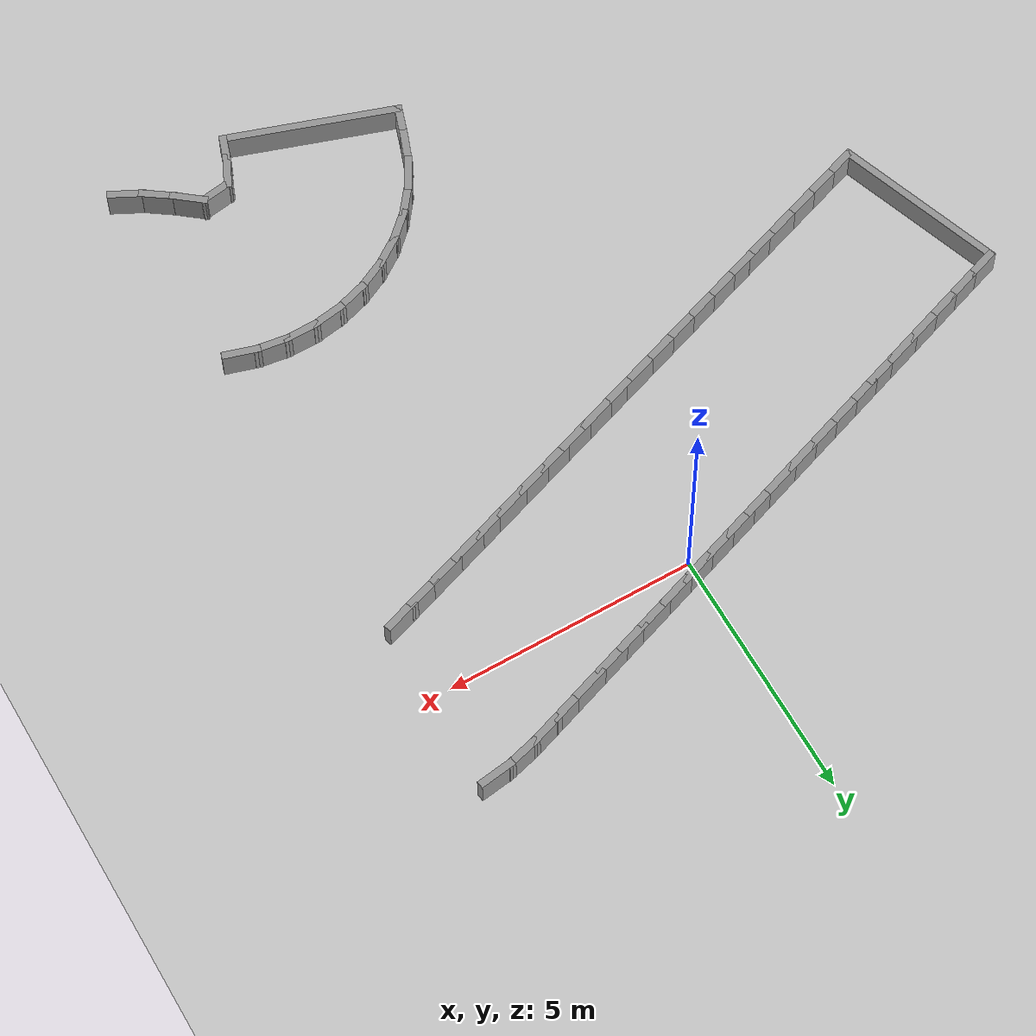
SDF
<sdf version="1.7">
 <world name="default">
  <model name="ground_plane">
   <static>1</static>
   <link name="link">
    <collision name="collision">
     <geometry><plane><normal>0 0 1</normal><size>100 100</size></plane></geometry>
     <surface><friction><ode><mu>100</mu><mu2>50</mu2></ode></friction></surface>
    </collision>
    <visual name="visual">
     <cast_shadows>0</cast_shadows>
     <geometry><plane><normal>0 0 1</normal><size>100 100</size></plane></geometry>
     <material>
      <script><uri>file://media/materials/scripts/gazebo.material</uri><name>Gazebo/Grey</name></script>
     </material>
    </visual>
   </link>
  </model>
  <model name="rand_turn_08">
   <link name="Wall_0">
    <collision name="Wall_0_Collision">
     <geometry><box><size>0.7500 0.1500 0.6000</size></box></geometry>
     <pose>0 0 0.3000 0 -0 0</pose>
    </collision>
    <visual name="Wall_0_Visual">
     <pose>0 0 0.3000 0 -0 0</pose>
     <geometry><box><size>0.7500 0.1500 0.6000</size></box></geometry>
     <material>
      <script><uri>file://media/materials/scripts/gazebo.material</uri><name>Gazebo/Grey</name></script>
      <ambient>1 1 1 1</ambient>
     </material>
    </visual>
    <pose>-7.8536 -2.4259 0 0 -0 0.33717</pose>
   </link>
   <link name="Wall_1">
    <collision name="Wall_1_Collision">
     <geometry><box><size>0.7500 0.1500 0.6000</size></box></geometry>
     <pose>0 0 0.3000 0 -0 0</pose>
    </collision>
    <visual name="Wall_1_Visual">
     <pose>0 0 0.3000 0 -0 0</pose>
     <geometry><box><size>0.7500 0.1500 0.6000</size></box></geometry>
     <material>
      <script><uri>file://media/materials/scripts/gazebo.material</uri><name>Gazebo/Grey</name></script>
      <ambient>1 1 1 1</ambient>
     </material>
    </visual>
    <pose>-7.2874 -2.2274 0 0 -0 0.33717</pose>
   </link>
   <link name="Wall_2">
    <collision name="Wall_2_Collision">
     <geometry><box><size>0.7500 0.1500 0.6000</size></box></geometry>
     <pose>0 0 0.3000 0 -0 0</pose>
    </collision>
    <visual name="Wall_2_Visual">
     <pose>0 0 0.3000 0 -0 0</pose>
     <geometry><box><size>0.7500 0.1500 0.6000</size></box></geometry>
     <material>
      <script><uri>file://media/materials/scripts/gazebo.material</uri><name>Gazebo/Grey</name></script>
      <ambient>1 1 1 1</ambient>
     </material>
    </visual>
    <pose>-6.7212 -2.0289 0 0 -0 0.33717</pose>
   </link>
   <link name="Wall_3">
    <collision name="Wall_3_Collision">
     <geometry><box><size>0.7500 0.1500 0.6000</size></box></geometry>
     <pose>0 0 0.3000 0 -0 0</pose>
    </collision>
    <visual name="Wall_3_Visual">
     <pose>0 0 0.3000 0 -0 0</pose>
     <geometry><box><size>0.7500 0.1500 0.6000</size></box></geometry>
     <material>
      <script><uri>file://media/materials/scripts/gazebo.material</uri><name>Gazebo/Grey</name></script>
      <ambient>1 1 1 1</ambient>
     </material>
    </visual>
    <pose>-6.1550 -1.8304 0 0 -0 0.33717</pose>
   </link>
   <link name="Wall_4">
    <collision name="Wall_4_Collision">
     <geometry><box><size>0.7500 0.1500 0.6000</size></box></geometry>
     <pose>0 0 0.3000 0 -0 0</pose>
    </collision>
    <visual name="Wall_4_Visual">
     <pose>0 0 0.3000 0 -0 0</pose>
     <geometry><box><size>0.7500 0.1500 0.6000</size></box></geometry>
     <material>
      <script><uri>file://media/materials/scripts/gazebo.material</uri><name>Gazebo/Grey</name></script>
      <ambient>1 1 1 1</ambient>
     </material>
    </visual>
    <pose>-5.5888 -1.6319 0 0 -0 0.33717</pose>
   </link>
   <link name="Wall_5">
    <collision name="Wall_5_Collision">
     <geometry><box><size>0.7500 0.1500 0.6000</size></box></geometry>
     <pose>0 0 0.3000 0 -0 0</pose>
    </collision>
    <visual name="Wall_5_Visual">
     <pose>0 0 0.3000 0 -0 0</pose>
     <geometry><box><size>0.7500 0.1500 0.6000</size></box></geometry>
     <material>
      <script><uri>file://media/materials/scripts/gazebo.material</uri><name>Gazebo/Grey</name></script>
      <ambient>1 1 1 1</ambient>
     </material>
    </visual>
    <pose>-5.0225 -1.4335 0 0 -0 0.33717</pose>
   </link>
   <link name="Wall_6">
    <collision name="Wall_6_Collision">
     <geometry><box><size>0.7500 0.1500 0.6000</size></box></geometry>
     <pose>0 0 0.3000 0 -0 0</pose>
    </collision>
    <visual name="Wall_6_Visual">
     <pose>0 0 0.3000 0 -0 0</pose>
     <geometry><box><size>0.7500 0.1500 0.6000</size></box></geometry>
     <material>
      <script><uri>file://media/materials/scripts/gazebo.material</uri><name>Gazebo/Grey</name></script>
      <ambient>1 1 1 1</ambient>
     </material>
    </visual>
    <pose>-4.4563 -1.2350 0 0 -0 0.33717</pose>
   </link>
   <link name="Wall_7">
    <collision name="Wall_7_Collision">
     <geometry><box><size>0.7500 0.1500 0.6000</size></box></geometry>
     <pose>0 0 0.3000 0 -0 0</pose>
    </collision>
    <visual name="Wall_7_Visual">
     <pose>0 0 0.3000 0 -0 0</pose>
     <geometry><box><size>0.7500 0.1500 0.6000</size></box></geometry>
     <material>
      <script><uri>file://media/materials/scripts/gazebo.material</uri><name>Gazebo/Grey</name></script>
      <ambient>1 1 1 1</ambient>
     </material>
    </visual>
    <pose>-3.8901 -1.0365 0 0 -0 0.33717</pose>
   </link>
   <link name="Wall_8">
    <collision name="Wall_8_Collision">
     <geometry><box><size>0.7500 0.1500 0.6000</size></box></geometry>
     <pose>0 0 0.3000 0 -0 0</pose>
    </collision>
    <visual name="Wall_8_Visual">
     <pose>0 0 0.3000 0 -0 0</pose>
     <geometry><box><size>0.7500 0.1500 0.6000</size></box></geometry>
     <material>
      <script><uri>file://media/materials/scripts/gazebo.material</uri><name>Gazebo/Grey</name></script>
      <ambient>1 1 1 1</ambient>
     </material>
    </visual>
    <pose>-3.3239 -0.8380 0 0 -0 0.33717</pose>
   </link>
   <link name="Wall_9">
    <collision name="Wall_9_Collision">
     <geometry><box><size>0.7500 0.1500 0.6000</size></box></geometry>
     <pose>0 0 0.3000 0 -0 0</pose>
    </collision>
    <visual name="Wall_9_Visual">
     <pose>0 0 0.3000 0 -0 0</pose>
     <geometry><box><size>0.7500 0.1500 0.6000</size></box></geometry>
     <material>
      <script><uri>file://media/materials/scripts/gazebo.material</uri><name>Gazebo/Grey</name></script>
      <ambient>1 1 1 1</ambient>
     </material>
    </visual>
    <pose>-2.7577 -0.6395 0 0 -0 0.33717</pose>
   </link>
   <link name="Wall_10">
    <collision name="Wall_10_Collision">
     <geometry><box><size>0.7500 0.1500 0.6000</size></box></geometry>
     <pose>0 0 0.3000 0 -0 0</pose>
    </collision>
    <visual name="Wall_10_Visual">
     <pose>0 0 0.3000 0 -0 0</pose>
     <geometry><box><size>0.7500 0.1500 0.6000</size></box></geometry>
     <material>
      <script><uri>file://media/materials/scripts/gazebo.material</uri><name>Gazebo/Grey</name></script>
      <ambient>1 1 1 1</ambient>
     </material>
    </visual>
    <pose>-2.1915 -0.4410 0 0 -0 0.33717</pose>
   </link>
   <link name="Wall_11">
    <collision name="Wall_11_Collision">
     <geometry><box><size>0.7500 0.1500 0.6000</size></box></geometry>
     <pose>0 0 0.3000 0 -0 0</pose>
    </collision>
    <visual name="Wall_11_Visual">
     <pose>0 0 0.3000 0 -0 0</pose>
     <geometry><box><size>0.7500 0.1500 0.6000</size></box></geometry>
     <material>
      <script><uri>file://media/materials/scripts/gazebo.material</uri><name>Gazebo/Grey</name></script>
      <ambient>1 1 1 1</ambient>
     </material>
    </visual>
    <pose>-1.6252 -0.2425 0 0 -0 0.33717</pose>
   </link>
   <link name="Wall_12">
    <collision name="Wall_12_Collision">
     <geometry><box><size>0.7500 0.1500 0.6000</size></box></geometry>
     <pose>0 0 0.3000 0 -0 0</pose>
    </collision>
    <visual name="Wall_12_Visual">
     <pose>0 0 0.3000 0 -0 0</pose>
     <geometry><box><size>0.7500 0.1500 0.6000</size></box></geometry>
     <material>
      <script><uri>file://media/materials/scripts/gazebo.material</uri><name>Gazebo/Grey</name></script>
      <ambient>1 1 1 1</ambient>
     </material>
    </visual>
    <pose>-1.0590 -0.0440 0 0 -0 0.33717</pose>
   </link>
   <link name="Wall_13">
    <collision name="Wall_13_Collision">
     <geometry><box><size>0.7500 0.1500 0.6000</size></box></geometry>
     <pose>0 0 0.3000 0 -0 0</pose>
    </collision>
    <visual name="Wall_13_Visual">
     <pose>0 0 0.3000 0 -0 0</pose>
     <geometry><box><size>0.7500 0.1500 0.6000</size></box></geometry>
     <material>
      <script><uri>file://media/materials/scripts/gazebo.material</uri><name>Gazebo/Grey</name></script>
      <ambient>1 1 1 1</ambient>
     </material>
    </visual>
    <pose>-0.4928 0.1545 0 0 -0 0.33717</pose>
   </link>
   <link name="Wall_14">
    <collision name="Wall_14_Collision">
     <geometry><box><size>0.7500 0.1500 0.6000</size></box></geometry>
     <pose>0 0 0.3000 0 -0 0</pose>
    </collision>
    <visual name="Wall_14_Visual">
     <pose>0 0 0.3000 0 -0 0</pose>
     <geometry><box><size>0.7500 0.1500 0.6000</size></box></geometry>
     <material>
      <script><uri>file://media/materials/scripts/gazebo.material</uri><name>Gazebo/Grey</name></script>
      <ambient>1 1 1 1</ambient>
     </material>
    </visual>
    <pose>0.0734 0.3530 0 0 -0 0.33717</pose>
   </link>
   <link name="Wall_15">
    <collision name="Wall_15_Collision">
     <geometry><box><size>0.7500 0.1500 0.6000</size></box></geometry>
     <pose>0 0 0.3000 0 -0 0</pose>
    </collision>
    <visual name="Wall_15_Visual">
     <pose>0 0 0.3000 0 -0 0</pose>
     <geometry><box><size>0.7500 0.1500 0.6000</size></box></geometry>
     <material>
      <script><uri>file://media/materials/scripts/gazebo.material</uri><name>Gazebo/Grey</name></script>
      <ambient>1 1 1 1</ambient>
     </material>
    </visual>
    <pose>0.6396 0.5515 0 0 -0 0.33717</pose>
   </link>
   <link name="Wall_16">
    <collision name="Wall_16_Collision">
     <geometry><box><size>0.7500 0.1500 0.6000</size></box></geometry>
     <pose>0 0 0.3000 0 -0 0</pose>
    </collision>
    <visual name="Wall_16_Visual">
     <pose>0 0 0.3000 0 -0 0</pose>
     <geometry><box><size>0.7500 0.1500 0.6000</size></box></geometry>
     <material>
      <script><uri>file://media/materials/scripts/gazebo.material</uri><name>Gazebo/Grey</name></script>
      <ambient>1 1 1 1</ambient>
     </material>
    </visual>
    <pose>1.2058 0.7500 0 0 -0 0.33717</pose>
   </link>
   <link name="Wall_17">
    <collision name="Wall_17_Collision">
     <geometry><box><size>0.7500 0.1500 0.6000</size></box></geometry>
     <pose>0 0 0.3000 0 -0 0</pose>
    </collision>
    <visual name="Wall_17_Visual">
     <pose>0 0 0.3000 0 -0 0</pose>
     <geometry><box><size>0.7500 0.1500 0.6000</size></box></geometry>
     <material>
      <script><uri>file://media/materials/scripts/gazebo.material</uri><name>Gazebo/Grey</name></script>
      <ambient>1 1 1 1</ambient>
     </material>
    </visual>
    <pose>1.7721 0.9485 0 0 -0 0.33717</pose>
   </link>
   <link name="Wall_18">
    <collision name="Wall_18_Collision">
     <geometry><box><size>0.7500 0.1500 0.6000</size></box></geometry>
     <pose>0 0 0.3000 0 -0 0</pose>
    </collision>
    <visual name="Wall_18_Visual">
     <pose>0 0 0.3000 0 -0 0</pose>
     <geometry><box><size>0.7500 0.1500 0.6000</size></box></geometry>
     <material>
      <script><uri>file://media/materials/scripts/gazebo.material</uri><name>Gazebo/Grey</name></script>
      <ambient>1 1 1 1</ambient>
     </material>
    </visual>
    <pose>2.3383 1.1470 0 0 -0 0.33717</pose>
   </link>
   <link name="Wall_19">
    <collision name="Wall_19_Collision">
     <geometry><box><size>0.7500 0.1500 0.6000</size></box></geometry>
     <pose>0 0 0.3000 0 -0 0</pose>
    </collision>
    <visual name="Wall_19_Visual">
     <pose>0 0 0.3000 0 -0 0</pose>
     <geometry><box><size>0.7500 0.1500 0.6000</size></box></geometry>
     <material>
      <script><uri>file://media/materials/scripts/gazebo.material</uri><name>Gazebo/Grey</name></script>
      <ambient>1 1 1 1</ambient>
     </material>
    </visual>
    <pose>2.9045 1.3455 0 0 -0 0.33717</pose>
   </link>
   <link name="Wall_20">
    <collision name="Wall_20_Collision">
     <geometry><box><size>0.7500 0.1500 0.6000</size></box></geometry>
     <pose>0 0 0.3000 0 -0 0</pose>
    </collision>
    <visual name="Wall_20_Visual">
     <pose>0 0 0.3000 0 -0 0</pose>
     <geometry><box><size>0.7500 0.1500 0.6000</size></box></geometry>
     <material>
      <script><uri>file://media/materials/scripts/gazebo.material</uri><name>Gazebo/Grey</name></script>
      <ambient>1 1 1 1</ambient>
     </material>
    </visual>
    <pose>3.4707 1.5439 0 0 -0 0.33717</pose>
   </link>
   <link name="Wall_21">
    <collision name="Wall_21_Collision">
     <geometry><box><size>0.7500 0.1500 0.6000</size></box></geometry>
     <pose>0 0 0.3000 0 -0 0</pose>
    </collision>
    <visual name="Wall_21_Visual">
     <pose>0 0 0.3000 0 -0 0</pose>
     <geometry><box><size>0.7500 0.1500 0.6000</size></box></geometry>
     <material>
      <script><uri>file://media/materials/scripts/gazebo.material</uri><name>Gazebo/Grey</name></script>
      <ambient>1 1 1 1</ambient>
     </material>
    </visual>
    <pose>4.0371 1.7418 0 0 -0 0.33480</pose>
   </link>
   <link name="Wall_22">
    <collision name="Wall_22_Collision">
     <geometry><box><size>0.7496 0.1500 0.6000</size></box></geometry>
     <pose>0 0 0.3000 0 -0 0</pose>
    </collision>
    <visual name="Wall_22_Visual">
     <pose>0 0 0.3000 0 -0 0</pose>
     <geometry><box><size>0.7496 0.1500 0.6000</size></box></geometry>
     <material>
      <script><uri>file://media/materials/scripts/gazebo.material</uri><name>Gazebo/Grey</name></script>
      <ambient>1 1 1 1</ambient>
     </material>
    </visual>
    <pose>4.6103 1.9170 0 0 -0 0.25872</pose>
   </link>
   <link name="Wall_23">
    <collision name="Wall_23_Collision">
     <geometry><box><size>0.7496 0.1500 0.6000</size></box></geometry>
     <pose>0 0 0.3000 0 -0 0</pose>
    </collision>
    <visual name="Wall_23_Visual">
     <pose>0 0 0.3000 0 -0 0</pose>
     <geometry><box><size>0.7496 0.1500 0.6000</size></box></geometry>
     <material>
      <script><uri>file://media/materials/scripts/gazebo.material</uri><name>Gazebo/Grey</name></script>
      <ambient>1 1 1 1</ambient>
     </material>
    </visual>
    <pose>5.1970 2.0360 0 0 -0 0.14129</pose>
   </link>
   <link name="Wall_65">
    <collision name="Wall_65_Collision">
     <geometry><box><size>0.7495 0.1500 0.6000</size></box></geometry>
     <pose>0 0 0.3000 0 -0 0</pose>
    </collision>
    <visual name="Wall_65_Visual">
     <pose>0 0 0.3000 0 -0 0</pose>
     <geometry><box><size>0.7495 0.1500 0.6000</size></box></geometry>
     <material>
      <script><uri>file://media/materials/scripts/gazebo.material</uri><name>Gazebo/Grey</name></script>
      <ambient>1 1 1 1</ambient>
     </material>
    </visual>
    <pose>5.4526 -11.8765 0 0 -0 2.66766</pose>
   </link>
   <link name="Wall_66">
    <collision name="Wall_66_Collision">
     <geometry><box><size>0.7495 0.1500 0.6000</size></box></geometry>
     <pose>0 0 0.3000 0 -0 0</pose>
    </collision>
    <visual name="Wall_66_Visual">
     <pose>0 0 0.3000 0 -0 0</pose>
     <geometry><box><size>0.7495 0.1500 0.6000</size></box></geometry>
     <material>
      <script><uri>file://media/materials/scripts/gazebo.material</uri><name>Gazebo/Grey</name></script>
      <ambient>1 1 1 1</ambient>
     </material>
    </visual>
    <pose>4.9402 -11.5680 0 0 -0 2.53175</pose>
   </link>
   <link name="Wall_67">
    <collision name="Wall_67_Collision">
     <geometry><box><size>0.7474 0.1500 0.6000</size></box></geometry>
     <pose>0 0 0.3000 0 -0 0</pose>
    </collision>
    <visual name="Wall_67_Visual">
     <pose>0 0 0.3000 0 -0 0</pose>
     <geometry><box><size>0.7474 0.1500 0.6000</size></box></geometry>
     <material>
      <script><uri>file://media/materials/scripts/gazebo.material</uri><name>Gazebo/Grey</name></script>
      <ambient>1 1 1 1</ambient>
     </material>
    </visual>
    <pose>4.4609 -11.2101 0 0 -0 2.46835</pose>
   </link>
   <link name="Wall_68">
    <collision name="Wall_68_Collision">
     <geometry><box><size>0.7188 0.1500 0.6000</size></box></geometry>
     <pose>0 0 0.3000 0 -0 0</pose>
    </collision>
    <visual name="Wall_68_Visual">
     <pose>0 0 0.3000 0 -0 0</pose>
     <geometry><box><size>0.7188 0.1500 0.6000</size></box></geometry>
     <material>
      <script><uri>file://media/materials/scripts/gazebo.material</uri><name>Gazebo/Grey</name></script>
      <ambient>1 1 1 1</ambient>
     </material>
    </visual>
    <pose>3.9470 -11.0716 0 0 -0 -2.97314</pose>
   </link>
   <link name="Wall_69">
    <collision name="Wall_69_Collision">
     <geometry><box><size>0.7418 0.1500 0.6000</size></box></geometry>
     <pose>0 0 0.3000 0 -0 0</pose>
    </collision>
    <visual name="Wall_69_Visual">
     <pose>0 0 0.3000 0 -0 0</pose>
     <geometry><box><size>0.7418 0.1500 0.6000</size></box></geometry>
     <material>
      <script><uri>file://media/materials/scripts/gazebo.material</uri><name>Gazebo/Grey</name></script>
      <ambient>1 1 1 1</ambient>
     </material>
    </visual>
    <pose>3.5409 -11.3871 0 0 -0 -2.00971</pose>
   </link>
   <link name="Wall_70">
    <collision name="Wall_70_Collision">
     <geometry><box><size>0.5775 0.1500 0.6000</size></box></geometry>
     <pose>0 0 0.3000 0 -0 0</pose>
    </collision>
    <visual name="Wall_70_Visual">
     <pose>0 0 0.3000 0 -0 0</pose>
     <geometry><box><size>0.5775 0.1500 0.6000</size></box></geometry>
     <material>
      <script><uri>file://media/materials/scripts/gazebo.material</uri><name>Gazebo/Grey</name></script>
      <ambient>1 1 1 1</ambient>
     </material>
    </visual>
    <pose>3.3478 -11.8578 0 0 -0 -1.89108</pose>
   </link>
   <link name="Wall_71">
    <collision name="Wall_71_Collision">
     <geometry><box><size>0.7500 0.1500 0.6000</size></box></geometry>
     <pose>0 0 0.3000 0 -0 0</pose>
    </collision>
    <visual name="Wall_71_Visual">
     <pose>0 0 0.3000 0 -0 0</pose>
     <geometry><box><size>0.7500 0.1500 0.6000</size></box></geometry>
     <material>
      <script><uri>file://media/materials/scripts/gazebo.material</uri><name>Gazebo/Grey</name></script>
      <ambient>1 1 1 1</ambient>
     </material>
    </visual>
    <pose>-6.7168 -5.6687 0 0 -0 0.33717</pose>
   </link>
   <link name="Wall_72">
    <collision name="Wall_72_Collision">
     <geometry><box><size>0.7500 0.1500 0.6000</size></box></geometry>
     <pose>0 0 0.3000 0 -0 0</pose>
    </collision>
    <visual name="Wall_72_Visual">
     <pose>0 0 0.3000 0 -0 0</pose>
     <geometry><box><size>0.7500 0.1500 0.6000</size></box></geometry>
     <material>
      <script><uri>file://media/materials/scripts/gazebo.material</uri><name>Gazebo/Grey</name></script>
      <ambient>1 1 1 1</ambient>
     </material>
    </visual>
    <pose>-6.1506 -5.4702 0 0 -0 0.33717</pose>
   </link>
   <link name="Wall_73">
    <collision name="Wall_73_Collision">
     <geometry><box><size>0.7500 0.1500 0.6000</size></box></geometry>
     <pose>0 0 0.3000 0 -0 0</pose>
    </collision>
    <visual name="Wall_73_Visual">
     <pose>0 0 0.3000 0 -0 0</pose>
     <geometry><box><size>0.7500 0.1500 0.6000</size></box></geometry>
     <material>
      <script><uri>file://media/materials/scripts/gazebo.material</uri><name>Gazebo/Grey</name></script>
      <ambient>1 1 1 1</ambient>
     </material>
    </visual>
    <pose>-5.5844 -5.2717 0 0 -0 0.33717</pose>
   </link>
   <link name="Wall_74">
    <collision name="Wall_74_Collision">
     <geometry><box><size>0.7500 0.1500 0.6000</size></box></geometry>
     <pose>0 0 0.3000 0 -0 0</pose>
    </collision>
    <visual name="Wall_74_Visual">
     <pose>0 0 0.3000 0 -0 0</pose>
     <geometry><box><size>0.7500 0.1500 0.6000</size></box></geometry>
     <material>
      <script><uri>file://media/materials/scripts/gazebo.material</uri><name>Gazebo/Grey</name></script>
      <ambient>1 1 1 1</ambient>
     </material>
    </visual>
    <pose>-5.0182 -5.0732 0 0 -0 0.33717</pose>
   </link>
   <link name="Wall_75">
    <collision name="Wall_75_Collision">
     <geometry><box><size>0.7500 0.1500 0.6000</size></box></geometry>
     <pose>0 0 0.3000 0 -0 0</pose>
    </collision>
    <visual name="Wall_75_Visual">
     <pose>0 0 0.3000 0 -0 0</pose>
     <geometry><box><size>0.7500 0.1500 0.6000</size></box></geometry>
     <material>
      <script><uri>file://media/materials/scripts/gazebo.material</uri><name>Gazebo/Grey</name></script>
      <ambient>1 1 1 1</ambient>
     </material>
    </visual>
    <pose>-4.4519 -4.8747 0 0 -0 0.33717</pose>
   </link>
   <link name="Wall_76">
    <collision name="Wall_76_Collision">
     <geometry><box><size>0.7500 0.1500 0.6000</size></box></geometry>
     <pose>0 0 0.3000 0 -0 0</pose>
    </collision>
    <visual name="Wall_76_Visual">
     <pose>0 0 0.3000 0 -0 0</pose>
     <geometry><box><size>0.7500 0.1500 0.6000</size></box></geometry>
     <material>
      <script><uri>file://media/materials/scripts/gazebo.material</uri><name>Gazebo/Grey</name></script>
      <ambient>1 1 1 1</ambient>
     </material>
    </visual>
    <pose>-3.8857 -4.6763 0 0 -0 0.33717</pose>
   </link>
   <link name="Wall_77">
    <collision name="Wall_77_Collision">
     <geometry><box><size>0.7500 0.1500 0.6000</size></box></geometry>
     <pose>0 0 0.3000 0 -0 0</pose>
    </collision>
    <visual name="Wall_77_Visual">
     <pose>0 0 0.3000 0 -0 0</pose>
     <geometry><box><size>0.7500 0.1500 0.6000</size></box></geometry>
     <material>
      <script><uri>file://media/materials/scripts/gazebo.material</uri><name>Gazebo/Grey</name></script>
      <ambient>1 1 1 1</ambient>
     </material>
    </visual>
    <pose>-3.3195 -4.4778 0 0 -0 0.33717</pose>
   </link>
   <link name="Wall_78">
    <collision name="Wall_78_Collision">
     <geometry><box><size>0.7500 0.1500 0.6000</size></box></geometry>
     <pose>0 0 0.3000 0 -0 0</pose>
    </collision>
    <visual name="Wall_78_Visual">
     <pose>0 0 0.3000 0 -0 0</pose>
     <geometry><box><size>0.7500 0.1500 0.6000</size></box></geometry>
     <material>
      <script><uri>file://media/materials/scripts/gazebo.material</uri><name>Gazebo/Grey</name></script>
      <ambient>1 1 1 1</ambient>
     </material>
    </visual>
    <pose>-2.7533 -4.2793 0 0 -0 0.33717</pose>
   </link>
   <link name="Wall_79">
    <collision name="Wall_79_Collision">
     <geometry><box><size>0.7500 0.1500 0.6000</size></box></geometry>
     <pose>0 0 0.3000 0 -0 0</pose>
    </collision>
    <visual name="Wall_79_Visual">
     <pose>0 0 0.3000 0 -0 0</pose>
     <geometry><box><size>0.7500 0.1500 0.6000</size></box></geometry>
     <material>
      <script><uri>file://media/materials/scripts/gazebo.material</uri><name>Gazebo/Grey</name></script>
      <ambient>1 1 1 1</ambient>
     </material>
    </visual>
    <pose>-2.1871 -4.0808 0 0 -0 0.33717</pose>
   </link>
   <link name="Wall_80">
    <collision name="Wall_80_Collision">
     <geometry><box><size>0.7500 0.1500 0.6000</size></box></geometry>
     <pose>0 0 0.3000 0 -0 0</pose>
    </collision>
    <visual name="Wall_80_Visual">
     <pose>0 0 0.3000 0 -0 0</pose>
     <geometry><box><size>0.7500 0.1500 0.6000</size></box></geometry>
     <material>
      <script><uri>file://media/materials/scripts/gazebo.material</uri><name>Gazebo/Grey</name></script>
      <ambient>1 1 1 1</ambient>
     </material>
    </visual>
    <pose>-1.6209 -3.8823 0 0 -0 0.33717</pose>
   </link>
   <link name="Wall_81">
    <collision name="Wall_81_Collision">
     <geometry><box><size>0.7500 0.1500 0.6000</size></box></geometry>
     <pose>0 0 0.3000 0 -0 0</pose>
    </collision>
    <visual name="Wall_81_Visual">
     <pose>0 0 0.3000 0 -0 0</pose>
     <geometry><box><size>0.7500 0.1500 0.6000</size></box></geometry>
     <material>
      <script><uri>file://media/materials/scripts/gazebo.material</uri><name>Gazebo/Grey</name></script>
      <ambient>1 1 1 1</ambient>
     </material>
    </visual>
    <pose>-1.0547 -3.6838 0 0 -0 0.33717</pose>
   </link>
   <link name="Wall_82">
    <collision name="Wall_82_Collision">
     <geometry><box><size>0.7500 0.1500 0.6000</size></box></geometry>
     <pose>0 0 0.3000 0 -0 0</pose>
    </collision>
    <visual name="Wall_82_Visual">
     <pose>0 0 0.3000 0 -0 0</pose>
     <geometry><box><size>0.7500 0.1500 0.6000</size></box></geometry>
     <material>
      <script><uri>file://media/materials/scripts/gazebo.material</uri><name>Gazebo/Grey</name></script>
      <ambient>1 1 1 1</ambient>
     </material>
    </visual>
    <pose>-0.4884 -3.4853 0 0 -0 0.33717</pose>
   </link>
   <link name="Wall_83">
    <collision name="Wall_83_Collision">
     <geometry><box><size>0.7500 0.1500 0.6000</size></box></geometry>
     <pose>0 0 0.3000 0 -0 0</pose>
    </collision>
    <visual name="Wall_83_Visual">
     <pose>0 0 0.3000 0 -0 0</pose>
     <geometry><box><size>0.7500 0.1500 0.6000</size></box></geometry>
     <material>
      <script><uri>file://media/materials/scripts/gazebo.material</uri><name>Gazebo/Grey</name></script>
      <ambient>1 1 1 1</ambient>
     </material>
    </visual>
    <pose>0.0778 -3.2868 0 0 -0 0.33717</pose>
   </link>
   <link name="Wall_84">
    <collision name="Wall_84_Collision">
     <geometry><box><size>0.7500 0.1500 0.6000</size></box></geometry>
     <pose>0 0 0.3000 0 -0 0</pose>
    </collision>
    <visual name="Wall_84_Visual">
     <pose>0 0 0.3000 0 -0 0</pose>
     <geometry><box><size>0.7500 0.1500 0.6000</size></box></geometry>
     <material>
      <script><uri>file://media/materials/scripts/gazebo.material</uri><name>Gazebo/Grey</name></script>
      <ambient>1 1 1 1</ambient>
     </material>
    </visual>
    <pose>0.6440 -3.0883 0 0 -0 0.33717</pose>
   </link>
   <link name="Wall_85">
    <collision name="Wall_85_Collision">
     <geometry><box><size>0.7500 0.1500 0.6000</size></box></geometry>
     <pose>0 0 0.3000 0 -0 0</pose>
    </collision>
    <visual name="Wall_85_Visual">
     <pose>0 0 0.3000 0 -0 0</pose>
     <geometry><box><size>0.7500 0.1500 0.6000</size></box></geometry>
     <material>
      <script><uri>file://media/materials/scripts/gazebo.material</uri><name>Gazebo/Grey</name></script>
      <ambient>1 1 1 1</ambient>
     </material>
    </visual>
    <pose>1.2102 -2.8898 0 0 -0 0.33717</pose>
   </link>
   <link name="Wall_86">
    <collision name="Wall_86_Collision">
     <geometry><box><size>0.7500 0.1500 0.6000</size></box></geometry>
     <pose>0 0 0.3000 0 -0 0</pose>
    </collision>
    <visual name="Wall_86_Visual">
     <pose>0 0 0.3000 0 -0 0</pose>
     <geometry><box><size>0.7500 0.1500 0.6000</size></box></geometry>
     <material>
      <script><uri>file://media/materials/scripts/gazebo.material</uri><name>Gazebo/Grey</name></script>
      <ambient>1 1 1 1</ambient>
     </material>
    </visual>
    <pose>1.7764 -2.6913 0 0 -0 0.33717</pose>
   </link>
   <link name="Wall_87">
    <collision name="Wall_87_Collision">
     <geometry><box><size>0.7500 0.1500 0.6000</size></box></geometry>
     <pose>0 0 0.3000 0 -0 0</pose>
    </collision>
    <visual name="Wall_87_Visual">
     <pose>0 0 0.3000 0 -0 0</pose>
     <geometry><box><size>0.7500 0.1500 0.6000</size></box></geometry>
     <material>
      <script><uri>file://media/materials/scripts/gazebo.material</uri><name>Gazebo/Grey</name></script>
      <ambient>1 1 1 1</ambient>
     </material>
    </visual>
    <pose>2.3426 -2.4928 0 0 -0 0.33717</pose>
   </link>
   <link name="Wall_88">
    <collision name="Wall_88_Collision">
     <geometry><box><size>0.7500 0.1500 0.6000</size></box></geometry>
     <pose>0 0 0.3000 0 -0 0</pose>
    </collision>
    <visual name="Wall_88_Visual">
     <pose>0 0 0.3000 0 -0 0</pose>
     <geometry><box><size>0.7500 0.1500 0.6000</size></box></geometry>
     <material>
      <script><uri>file://media/materials/scripts/gazebo.material</uri><name>Gazebo/Grey</name></script>
      <ambient>1 1 1 1</ambient>
     </material>
    </visual>
    <pose>2.9089 -2.2943 0 0 -0 0.33717</pose>
   </link>
   <link name="Wall_89">
    <collision name="Wall_89_Collision">
     <geometry><box><size>0.7500 0.1500 0.6000</size></box></geometry>
     <pose>0 0 0.3000 0 -0 0</pose>
    </collision>
    <visual name="Wall_89_Visual">
     <pose>0 0 0.3000 0 -0 0</pose>
     <geometry><box><size>0.7500 0.1500 0.6000</size></box></geometry>
     <material>
      <script><uri>file://media/materials/scripts/gazebo.material</uri><name>Gazebo/Grey</name></script>
      <ambient>1 1 1 1</ambient>
     </material>
    </visual>
    <pose>3.4751 -2.0958 0 0 -0 0.33717</pose>
   </link>
   <link name="Wall_90">
    <collision name="Wall_90_Collision">
     <geometry><box><size>0.7500 0.1500 0.6000</size></box></geometry>
     <pose>0 0 0.3000 0 -0 0</pose>
    </collision>
    <visual name="Wall_90_Visual">
     <pose>0 0 0.3000 0 -0 0</pose>
     <geometry><box><size>0.7500 0.1500 0.6000</size></box></geometry>
     <material>
      <script><uri>file://media/materials/scripts/gazebo.material</uri><name>Gazebo/Grey</name></script>
      <ambient>1 1 1 1</ambient>
     </material>
    </visual>
    <pose>4.0413 -1.8973 0 0 -0 0.33717</pose>
   </link>
   <link name="Wall_91">
    <collision name="Wall_91_Collision">
     <geometry><box><size>0.7500 0.1500 0.6000</size></box></geometry>
     <pose>0 0 0.3000 0 -0 0</pose>
    </collision>
    <visual name="Wall_91_Visual">
     <pose>0 0 0.3000 0 -0 0</pose>
     <geometry><box><size>0.7500 0.1500 0.6000</size></box></geometry>
     <material>
      <script><uri>file://media/materials/scripts/gazebo.material</uri><name>Gazebo/Grey</name></script>
      <ambient>1 1 1 1</ambient>
     </material>
    </visual>
    <pose>4.6075 -1.6989 0 0 -0 0.33717</pose>
   </link>
   <link name="Wall_92">
    <collision name="Wall_92_Collision">
     <geometry><box><size>0.7500 0.1500 0.6000</size></box></geometry>
     <pose>0 0 0.3000 0 -0 0</pose>
    </collision>
    <visual name="Wall_92_Visual">
     <pose>0 0 0.3000 0 -0 0</pose>
     <geometry><box><size>0.7500 0.1500 0.6000</size></box></geometry>
     <material>
      <script><uri>file://media/materials/scripts/gazebo.material</uri><name>Gazebo/Grey</name></script>
      <ambient>1 1 1 1</ambient>
     </material>
    </visual>
    <pose>5.1742 -1.5018 0 0 -0 0.33215</pose>
   </link>
   <link name="Wall_117">
    <collision name="Wall_117_Collision">
     <geometry><box><size>0.7494 0.1500 0.6000</size></box></geometry>
     <pose>0 0 0.3000 0 -0 0</pose>
    </collision>
    <visual name="Wall_117_Visual">
     <pose>0 0 0.3000 0 -0 0</pose>
     <geometry><box><size>0.7494 0.1500 0.6000</size></box></geometry>
     <material>
      <script><uri>file://media/materials/scripts/gazebo.material</uri><name>Gazebo/Grey</name></script>
      <ambient>1 1 1 1</ambient>
     </material>
    </visual>
    <pose>5.1596 -7.7254 0 0 -0 2.85143</pose>
   </link>
   <link name="Wall_118">
    <collision name="Wall_118_Collision">
     <geometry><box><size>0.7494 0.1500 0.6000</size></box></geometry>
     <pose>0 0 0.3000 0 -0 0</pose>
    </collision>
    <visual name="Wall_118_Visual">
     <pose>0 0 0.3000 0 -0 0</pose>
     <geometry><box><size>0.7494 0.1500 0.6000</size></box></geometry>
     <material>
      <script><uri>file://media/materials/scripts/gazebo.material</uri><name>Gazebo/Grey</name></script>
      <ambient>1 1 1 1</ambient>
     </material>
    </visual>
    <pose>4.5757 -7.5975 0 0 -0 3.00045</pose>
   </link>
   <link name="Wall_119">
    <collision name="Wall_119_Collision">
     <geometry><box><size>0.7494 0.1500 0.6000</size></box></geometry>
     <pose>0 0 0.3000 0 -0 0</pose>
    </collision>
    <visual name="Wall_119_Visual">
     <pose>0 0 0.3000 0 -0 0</pose>
     <geometry><box><size>0.7494 0.1500 0.6000</size></box></geometry>
     <material>
      <script><uri>file://media/materials/scripts/gazebo.material</uri><name>Gazebo/Grey</name></script>
      <ambient>1 1 1 1</ambient>
     </material>
    </visual>
    <pose>3.9794 -7.5588 0 0 -0 -3.12995</pose>
   </link>
   <link name="Wall_120">
    <collision name="Wall_120_Collision">
     <geometry><box><size>0.7494 0.1500 0.6000</size></box></geometry>
     <pose>0 0 0.3000 0 -0 0</pose>
    </collision>
    <visual name="Wall_120_Visual">
     <pose>0 0 0.3000 0 -0 0</pose>
     <geometry><box><size>0.7494 0.1500 0.6000</size></box></geometry>
     <material>
      <script><uri>file://media/materials/scripts/gazebo.material</uri><name>Gazebo/Grey</name></script>
      <ambient>1 1 1 1</ambient>
     </material>
    </visual>
    <pose>3.3839 -7.6107 0 0 -0 -2.97943</pose>
   </link>
   <link name="Wall_121">
    <collision name="Wall_121_Collision">
     <geometry><box><size>0.7494 0.1500 0.6000</size></box></geometry>
     <pose>0 0 0.3000 0 -0 0</pose>
    </collision>
    <visual name="Wall_121_Visual">
     <pose>0 0 0.3000 0 -0 0</pose>
     <geometry><box><size>0.7494 0.1500 0.6000</size></box></geometry>
     <material>
      <script><uri>file://media/materials/scripts/gazebo.material</uri><name>Gazebo/Grey</name></script>
      <ambient>1 1 1 1</ambient>
     </material>
    </visual>
    <pose>2.8030 -7.7512 0 0 -0 -2.82916</pose>
   </link>
   <link name="Wall_122">
    <collision name="Wall_122_Collision">
     <geometry><box><size>0.7494 0.1500 0.6000</size></box></geometry>
     <pose>0 0 0.3000 0 -0 0</pose>
    </collision>
    <visual name="Wall_122_Visual">
     <pose>0 0 0.3000 0 -0 0</pose>
     <geometry><box><size>0.7494 0.1500 0.6000</size></box></geometry>
     <material>
      <script><uri>file://media/materials/scripts/gazebo.material</uri><name>Gazebo/Grey</name></script>
      <ambient>1 1 1 1</ambient>
     </material>
    </visual>
    <pose>2.2500 -7.9778 0 0 -0 -2.67613</pose>
   </link>
   <link name="Wall_123">
    <collision name="Wall_123_Collision">
     <geometry><box><size>0.7494 0.1500 0.6000</size></box></geometry>
     <pose>0 0 0.3000 0 -0 0</pose>
    </collision>
    <visual name="Wall_123_Visual">
     <pose>0 0 0.3000 0 -0 0</pose>
     <geometry><box><size>0.7494 0.1500 0.6000</size></box></geometry>
     <material>
      <script><uri>file://media/materials/scripts/gazebo.material</uri><name>Gazebo/Grey</name></script>
      <ambient>1 1 1 1</ambient>
     </material>
    </visual>
    <pose>1.7373 -8.2851 0 0 -0 -2.52711</pose>
   </link>
   <link name="Wall_124">
    <collision name="Wall_124_Collision">
     <geometry><box><size>0.7494 0.1500 0.6000</size></box></geometry>
     <pose>0 0 0.3000 0 -0 0</pose>
    </collision>
    <visual name="Wall_124_Visual">
     <pose>0 0 0.3000 0 -0 0</pose>
     <geometry><box><size>0.7494 0.1500 0.6000</size></box></geometry>
     <material>
      <script><uri>file://media/materials/scripts/gazebo.material</uri><name>Gazebo/Grey</name></script>
      <ambient>1 1 1 1</ambient>
     </material>
    </visual>
    <pose>1.2768 -8.6660 0 0 -0 -2.37409</pose>
   </link>
   <link name="Wall_125">
    <collision name="Wall_125_Collision">
     <geometry><box><size>0.7494 0.1500 0.6000</size></box></geometry>
     <pose>0 0 0.3000 0 -0 0</pose>
    </collision>
    <visual name="Wall_125_Visual">
     <pose>0 0 0.3000 0 -0 0</pose>
     <geometry><box><size>0.7494 0.1500 0.6000</size></box></geometry>
     <material>
      <script><uri>file://media/materials/scripts/gazebo.material</uri><name>Gazebo/Grey</name></script>
      <ambient>1 1 1 1</ambient>
     </material>
    </visual>
    <pose>0.8791 -9.1121 0 0 -0 -2.22381</pose>
   </link>
   <link name="Wall_126">
    <collision name="Wall_126_Collision">
     <geometry><box><size>0.7494 0.1500 0.6000</size></box></geometry>
     <pose>0 0 0.3000 0 -0 0</pose>
    </collision>
    <visual name="Wall_126_Visual">
     <pose>0 0 0.3000 0 -0 0</pose>
     <geometry><box><size>0.7494 0.1500 0.6000</size></box></geometry>
     <material>
      <script><uri>file://media/materials/scripts/gazebo.material</uri><name>Gazebo/Grey</name></script>
      <ambient>1 1 1 1</ambient>
     </material>
    </visual>
    <pose>0.5526 -9.6128 0 0 -0 -2.07330</pose>
   </link>
   <link name="Wall_127">
    <collision name="Wall_127_Collision">
     <geometry><box><size>0.7496 0.1500 0.6000</size></box></geometry>
     <pose>0 0 0.3000 0 -0 0</pose>
    </collision>
    <visual name="Wall_127_Visual">
     <pose>0 0 0.3000 0 -0 0</pose>
     <geometry><box><size>0.7496 0.1500 0.6000</size></box></geometry>
     <material>
      <script><uri>file://media/materials/scripts/gazebo.material</uri><name>Gazebo/Grey</name></script>
      <ambient>1 1 1 1</ambient>
     </material>
    </visual>
    <pose>0.3035 -10.1563 0 0 -0 -1.92796</pose>
   </link>
   <link name="Wall_128">
    <collision name="Wall_128_Collision">
     <geometry><box><size>0.7206 0.1500 0.6000</size></box></geometry>
     <pose>0 0 0.3000 0 -0 0</pose>
    </collision>
    <visual name="Wall_128_Visual">
     <pose>0 0 0.3000 0 -0 0</pose>
     <geometry><box><size>0.7206 0.1500 0.6000</size></box></geometry>
     <material>
      <script><uri>file://media/materials/scripts/gazebo.material</uri><name>Gazebo/Grey</name></script>
      <ambient>1 1 1 1</ambient>
     </material>
    </visual>
    <pose>0.1088 -10.7080 0 0 -0 -1.89108</pose>
   </link>
   <link name="Wall_129">
    <collision name="Wall_129_Collision">
     <geometry><box><size>3.5863 0.1500 0.6000</size></box></geometry>
     <pose>0 0 0.3000 0 -0 0</pose>
    </collision>
    <visual name="Wall_129_Visual">
     <pose>0 0 0.3000 0 -0 0</pose>
     <geometry><box><size>3.5863 0.1500 0.6000</size></box></geometry>
     <material>
      <script><uri>file://media/materials/scripts/gazebo.material</uri><name>Gazebo/Grey</name></script>
      <ambient>1 1 1 1</ambient>
     </material>
    </visual>
    <pose>-7.5683 -4.1466 0 0 -0 1.90797</pose>
   </link>
   <link name="Wall_130">
    <collision name="Wall_130_Collision">
     <geometry><box><size>3.5863 0.1500 0.6000</size></box></geometry>
     <pose>0 0 0.3000 0 -0 0</pose>
    </collision>
    <visual name="Wall_130_Visual">
     <pose>0 0 0.3000 0 -0 0</pose>
     <geometry><box><size>3.5863 0.1500 0.6000</size></box></geometry>
     <material>
      <script><uri>file://media/materials/scripts/gazebo.material</uri><name>Gazebo/Grey</name></script>
      <ambient>1 1 1 1</ambient>
     </material>
    </visual>
    <pose>1.6498 -11.5197 0 0 -0 2.82130</pose>
   </link>
   <static>1</static>
  </model>
 </world>
</sdf>
